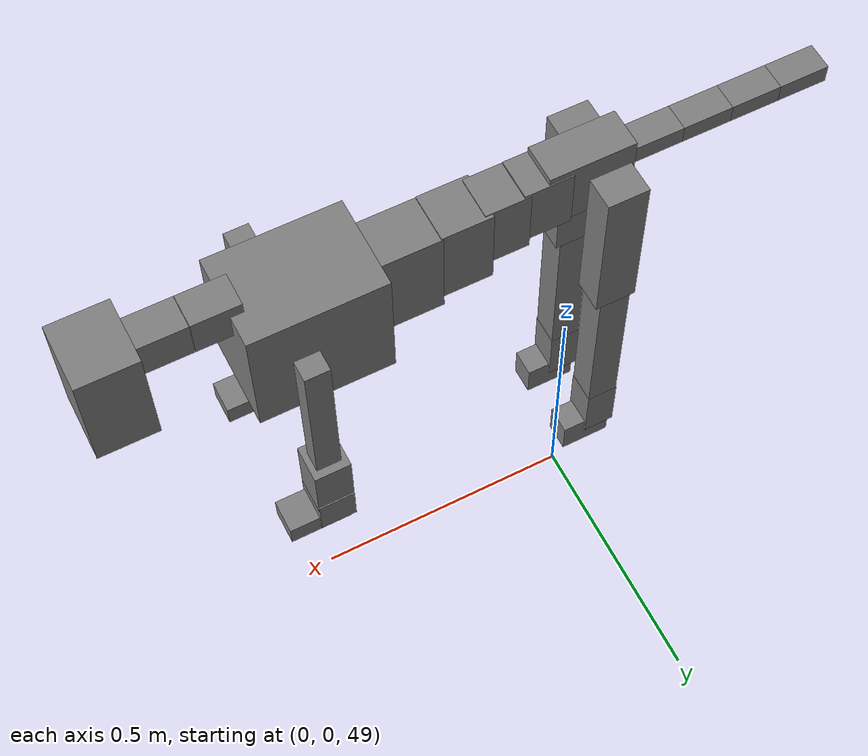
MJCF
<mujoco model="dog">

    <default>
        <joint armature="0.02" stiffness="1" damping="0.2" limited="true"/>
        <geom condim="3" friction="1 0.05 0.05" margin="0.01"/>
        <motor ctrllimited="true" ctrlrange="-1.0 1.0" forcelimited="true" gear="50"/>
    </default>

    <compiler inertiafromgeom="true" angle="radian"/>

    <option timestep="0.016" iterations="50" tolerance="1e-10" solver="Newton" jacobian="dense" cone="pyramidal"/>

    <size nconmax="20000" njmax="60000" nstack="5000000"/>
    <visual>
        <map force="0.1" zfar="30"/>
        <rgba haze="0.15 0.25 0.35 1"/>
        <quality shadowsize="2048"/>
        <global offwidth="800" offheight="800"/>
    </visual>

    <asset>
        <texture type="skybox" builtin="gradient" rgb1="0.3 0.5 0.7" rgb2="0 0 0" width="512" height="512"/>
        <texture name="texplane" type="2d" builtin="checker" rgb1=".2 .3 .4" rgb2=".1 0.15 0.2" width="512" height="512"
                 mark="cross" markrgb=".8 .8 .8"/>
        <texture name="texgeom" type="cube" builtin="flat" mark="cross" width="127" height="1278" rgb1="0.8 0.6 0.4"
                 rgb2="0.8 0.6 0.4" markrgb="1 1 1" random="0.01"/>

        <material name="matplane" reflectance="0.3" texture="texplane" texrepeat="1 1" texuniform="true"/>
        <material name="matgeom" texture="texgeom" texuniform="true" rgba="0.8 0.6 .4 1"/>
    </asset>

    <worldbody>
        <geom name="floor" pos="0 0 0" size="0 0 .25" type="plane" material="matplane" condim="3"/>

        <light directional="false" diffuse=".2 .2 .2" specular="0 0 0" pos="0 0 5" dir="0 0 -1" castshadow="false"/>
        <light mode="targetbodycom" target="torso" directional="false" diffuse=".8 .8 .8" specular="0.3 0.3 0.3"
               pos="0 0 4.0" dir="0 0 -1"/>

        <body name="root" pos="0 0 50">
            <freejoint name="root_1"/>
            <geom type="box" pos="0 0 -0.02" size="0.0774  0.0358  0.063" density="2030"/>

            <body name="spine1" pos="0.054 0 0">
                <joint name="spine1_y" axis="0 1 0" range="0 0.7" limited="true"/>
                <geom type="box" pos="0.02375 0 -0.03" size="0.04375  0.0375  0.05985" density="2030"/>

                <body name="spine2" pos="0.0612 0 0">
                    <joint name="spine2_y" axis="0 1 0" range="-0.15 0.15" limited="true"/>
                    <geom type="box" pos="0.03555  0  -0.04" size="0.04055  0.039  0.06615" density="2030"/>

                    <body name="spine3" pos="0.0730 0 0">
                        <joint name="spine3_y" axis="0 1 0" range="-0.15 0.15" limited="true"/>
                        <geom type="box" pos="0.03555  0  -0.057" size="0.04555  0.0445  0.081" density="2030"/>

                        <body name="spine4" pos="0.0780 0 0">
                            <joint name="spine4_y" axis="0 1 0" range="-0.15 0.15" limited="true"/>
                            <geom type="box" pos="0.05265  0  -0.07" size="0.05265  0.045  0.09135" density="2030"/>

                            <body name="torso" pos="0.1082 0 0">
                                <joint name="torso_y" axis="0 1 0" range="-0.15 0.15" limited="true"/>
                                <geom type="box" pos="0.11925  0  -0.085" size="0.11925  0.085  0.11745"
                                      density="2030"/>

                                <body name="neck1" pos="0.2160  0   0.0180">
                                    <joint name="neck1_y" axis="0 1 0" range="-1.2  -1" limited="true"/>
                                    <geom type="box" pos="0.0423  0  0" size="0.0423  0.03  0.036" density="2325"/>

                                    <body name="neck2" pos="0.0853  0  0">
                                        <joint name="neck2_y" axis="0 1 0" range="0.1  0" limited="true"/>
                                        <geom type="box" pos="0.0423  0  0" size="0.0423  0.03  0.036" density="2325"/>

                                        <body name="head" pos="0.0853  0  0">
                                            <joint name="head_y" axis="0 1 0" range="-0.3  -0.2" limited="true"/>
                                            <geom type="box" pos="0.0531  0  -0.055" size="0.0531  0.06  0.1044"
                                                  density="4030"/>

                                        </body>
                                    </body>
                                </body>

                                <body name="front_shoulder" pos="0.156  0   -0.0480">
                                    <joint name="front_shoulder_y" axis="0 1 0" range="-1 1.5" limited="true"/>
                                    <geom type="box" pos="0 0.13 -0.1318" size="0.0220  0.0188  0.1585" density="1158"/>
                                    <geom type="box" pos="0 -0.13 -0.1318" size="0.0220  0.0188  0.1585"
                                          density="1158"/>

                                    <body name="front_elbow" pos="0  0  -0.2636">
                                        <joint name="front_elbow_y" axis="0 1 0" range="-2 0" limited="true"/>
                                        <geom type="box" pos="0 0.13 -0.0569" size="0.0328  0.0335  0.0569"
                                              density="1081"/>
                                        <geom type="box" pos="0 -0.13 -0.0569" size="0.0328  0.0335  0.0569"
                                              density="1081"/>

                                        <body name="front_wrist" pos="0  0  -0.1137">
                                            <joint name="front_wrist_y" axis="0 1 0" range="-0.2 0" limited="true"/>
                                            <geom type="box" pos="0 0.13 -0.0221" size="0.0323  0.0359  0.0353"
                                                  density="1664"/>
                                            <geom type="box" pos="0 -0.13 -0.0221" size="0.0323  0.0359  0.0353"
                                                  density="1664"/>

                                            <body name="front_finger_end" pos="0  0  -0.0443">
                                                <joint name="front_finger_y" axis="0 1 0" range="-0.4 1"
                                                       limited="true"/>
                                                <geom type="box" pos="0.0307  0.13  -0.0054"
                                                      size="0.0563  0.0307  0.0204" density="1515"/>
                                                <geom type="box" pos="0.0307  -0.13  -0.0054"
                                                      size="0.0563  0.0307  0.0204" density="1515"/>

                                            </body>

                                        </body>
                                    </body>
                                </body>

                            </body>
                        </body>
                    </body>
                </body>
            </body>

            <body name="back_hip" pos="-0.03 0 -0.018">
                <joint name="back_hip_y" axis="0 1 0" range="-1.5 0.3" limited="true"/>
                <geom type="box" pos="0 0.07 -0.1250" size="0.0375  0.0294  0.1478" density="1154"/>
                <geom type="box" pos="0 -0.07 -0.1250" size="0.0375  0.0294  0.1478" density="1154"/>

                <body name="back_knee" pos="0  0  -0.2499">
                    <joint name="back_knee_y" axis="0 1 0" range="0 2.8" limited="true"/>
                    <geom type="box" pos="0 0.07 -0.1751" size="0.0286  0.0282  0.1906" density="1227"/>
                    <geom type="box" pos="0 -0.07 -0.1751" size="0.0286  0.0282  0.1906" density="1227"/>

                    <body name="back_ankle" pos="0  0  -0.3501">
                        <joint name="back_ankle_y" axis="0 1 0" range="-2.2 0" limited="true"/>
                        <geom type="box" pos="0 0.07 -0.0469" size="0.0293  0.0293  0.0581" density="1284"/>
                        <geom type="box" pos="0 -0.07 -0.0469" size="0.0293  0.0293  0.0581" density="1284"/>

                        <body name="back_toe_end" pos="0  0  -0.0938">
                            <joint name="back_toe_y" axis="0 1 0" range="-0.4 1" limited="true"/>
                            <geom type="box" pos="0.0254  0.07  -0.0181" size="0.0466  0.0254  0.0331" density="1515"/>
                            <geom type="box" pos="0.0254  -0.07  -0.0181" size="0.0466  0.0254  0.0331" density="1515"/>

                        </body>
                    </body>
                </body>
            </body>

            <body name="tail1" pos="-0.074 0 -0.006">
                <joint name="tail1_y" axis="0 1 0" range="-0.2 0.2" limited="true"/>
                <geom type="box" pos="-0.0536  0  0" size="0.045  0.025  0.0175" density="1587"/>

                <body name="tail2" pos="-0.09 0 0">
                    <joint name="tail2_y" axis="0 1 0" range="-0.2 0.2" limited="true"/>
                    <geom type="box" pos="-0.0536  0  0" size="0.045  0.025  0.0175" density="1587"/>

                    <body name="tail3" pos="-0.09 0 0">
                        <joint name="tail3_y" axis="0 1 0" range="-0.2 0.2" limited="true"/>
                        <geom type="box" pos="-0.0536  0  0" size="0.045  0.025  0.0175" density="1587"/>

                        <body name="tail4" pos="-0.09 0 0">
                            <joint name="tail4_y" axis="0 1 0" range="-0.2 0.2" limited="true"/>
                            <geom type="box" pos="-0.0536  0  0" size="0.045  0.025  0.0175" density="1587"/>

                        </body>
                    </body>
                </body>
            </body>
        </body>
    </worldbody>

    <actuator>
        <motor joint="spine1_y" forcerange="-150 150     "/>
        <motor joint="spine2_y" forcerange="-150 150     "/>
        <motor joint="spine3_y" forcerange="-150 150     "/>
        <motor joint="spine4_y" forcerange="-150 150     "/>
        <motor joint="torso_y" forcerange="-150 150     "/>
        <motor joint="neck1_y" forcerange="-100 100       "/>
        <motor joint="neck2_y" forcerange="-100 100       "/>
        <motor joint="head_y" forcerange="-150 150       "/>
        <motor joint="front_shoulder_y" forcerange="-117.80 107.72"/>
        <motor joint="front_elbow_y" forcerange="-169.13 174.87"/>
        <motor joint="front_wrist_y" forcerange="-146.41 140.48"/>
        <motor joint="front_finger_y" forcerange="-93.95 29.72"/>
        <motor joint="back_hip_y" forcerange="-215.76 376.63"/>
        <motor joint="back_knee_y" forcerange="-211.38 399.00"/>
        <motor joint="back_angle_y" forcerange="-199.47 169.57"/>
        <motor joint="back_toe_y" forcerange="-62.26 61.03"/>
        <motor joint="tail1_y" forcerange="-50 50     "/>
        <motor joint="tail2_y" forcerange="-50 50     "/>
        <motor joint="tail3_y" forcerange="-50 50     "/>
        <motor joint="tail4_y" forcerange="-50 50     "/>
    </actuator>
</mujoco>
